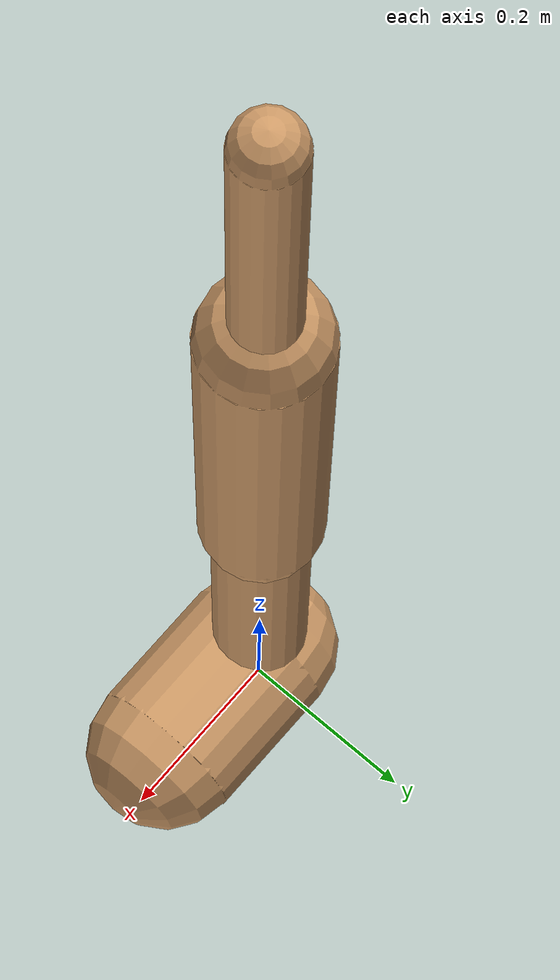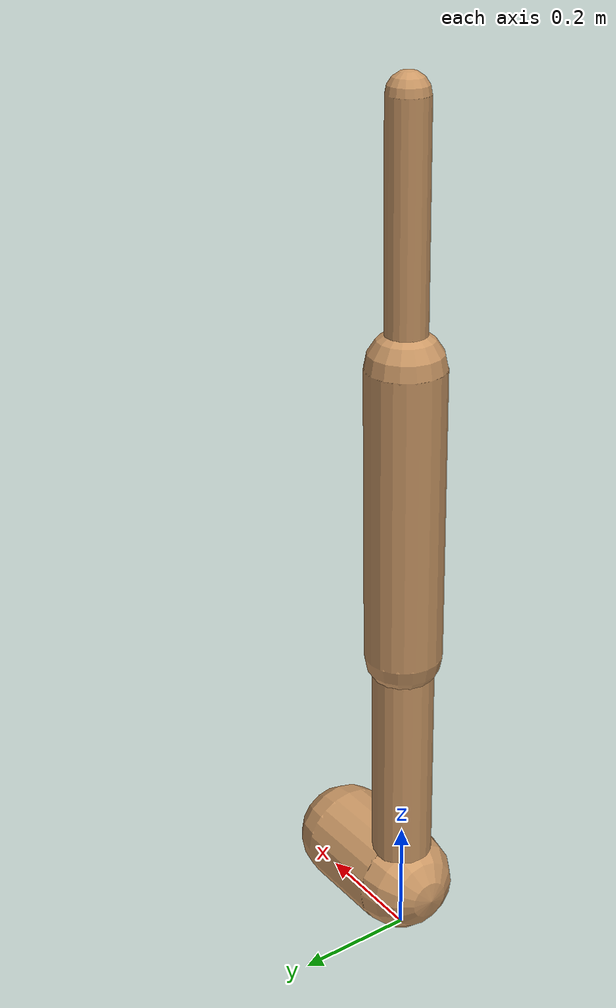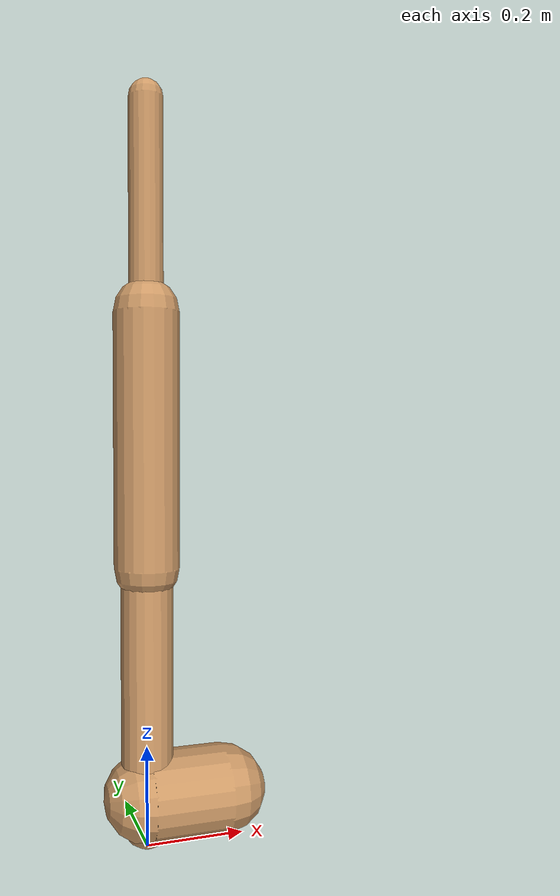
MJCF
<mujoco model="walker2d">
  <compiler angle="degree" coordinate="global" inertiafromgeom="true" />
  <default>
    <joint armature="0.01" damping=".1" limited="true" />
    <geom conaffinity="0" condim="3" contype="1" density="1000" friction="0.8 .1 .1" rgba="0.8 0.6 .4 1" />
  </default>
  <option integrator="RK4" timestep="0.002" />
  <worldbody>

    <body name="torso" pos="0 0 0.09410848487422623">
      <joint armature="0" axis="1 0 0" damping="0" limited="false" name="ignorex" pos="0 0 0" stiffness="0" type="slide" />
      <joint armature="0" axis="0 0 1" damping="0" limited="false" name="ignorez" pos="0 0 0" ref="1.25" stiffness="0" type="slide" />
      <joint armature="0" axis="0 1 0" damping="0" limited="false" name="ignorey" pos="0 0 0" stiffness="0" type="hinge" />
      <geom fromto="0 0 1.45 0 0 1.05" name="torso_geom" size="0.03351968361748279" type="capsule" />
      <body name="thigh">
        <joint axis="0 -1 0" name="thigh_joint" pos="0 0 1.05" range="-150 0" type="hinge" />
        <geom fromto="0.0 0.0 1.05 0.0 0.0 0.5554222966385244" name="thigh_geom" size="0.06403219344140532" type="capsule" />
        <body name="leg" pos="0.0 0.0 -0.044577703361475596">
          <joint axis="0 -1 0" name="leg_joint" pos="0 0 0.6" range="-150 0" type="hinge" />
          <geom fromto="0.0 0.0 0.6 0.0 0.0 0.05046921848724936" name="leg_geom" size="0.051225754753124256" type="capsule" />
          <body name="foot" pos="0.0 0.0 -0.04953078151275064">
            <joint axis="0 -1 0" name="foot_joint" pos="0 0 0.1" range="-45 45" type="hinge" />
            <geom fromto="0.0 0.0 0.1 0.15574208060736316 0.0 0.1" name="foot_geom" size="0.0872689689717911" type="capsule" />
          </body>
        </body>
      </body>

      <body name="thigh_left">
        <joint axis="0 -1 0" name="thigh_left_joint" pos="0 0 1.05" range="-150 0" type="hinge" />
        <geom fromto="0.0 0.0 1.05 0.0 0.0 0.5554222966385244" name="thigh_left_geom" rgba=".7 .3 .6 1" size="0.06403219344140532" type="capsule" />
        <body name="leg_left" pos="0.0 0.0 -0.044577703361475596">
          <joint axis="0 -1 0" name="leg_left_joint" pos="0 0 0.6" range="-150 0" type="hinge" />
          <geom fromto="0.0 0.0 0.6 0.0 0.0 0.05046921848724936" name="leg_left_geom" rgba=".7 .3 .6 1" size="0.051225754753124256" type="capsule" />
          <body name="foot_left" pos="0.0 0.0 -0.04953078151275064">
            <joint axis="0 -1 0" name="foot_left_joint" pos="0 0 0.1" range="-45 45" type="hinge" />
            <geom fromto="0.0 0.0 0.1 0.15574208060736316 0.0 0.1" name="foot_left_geom" rgba=".7 .3 .6 1" size="0.0872689689717911" type="capsule" />
          </body>
        </body>
      </body>
    </body>
  </worldbody>
  <actuator>

    <motor ctrllimited="true" ctrlrange="-1.0 1.0" gear="100" joint="thigh_joint" />
    <motor ctrllimited="true" ctrlrange="-1.0 1.0" gear="100" joint="leg_joint" />
    <motor ctrllimited="true" ctrlrange="-1.0 1.0" gear="100" joint="foot_joint" />
    <motor ctrllimited="true" ctrlrange="-1.0 1.0" gear="100" joint="thigh_left_joint" />
    <motor ctrllimited="true" ctrlrange="-1.0 1.0" gear="100" joint="leg_left_joint" />
    <motor ctrllimited="true" ctrlrange="-1.0 1.0" gear="100" joint="foot_left_joint" />

  </actuator>
</mujoco>
